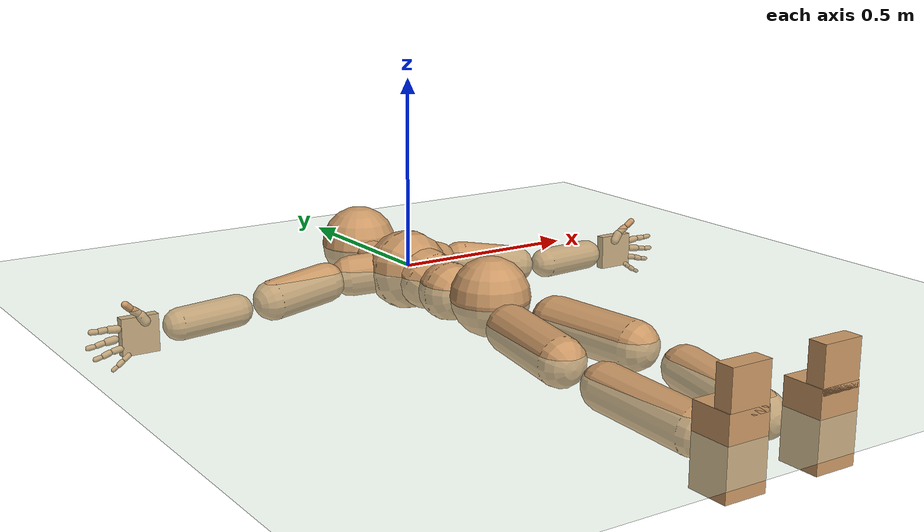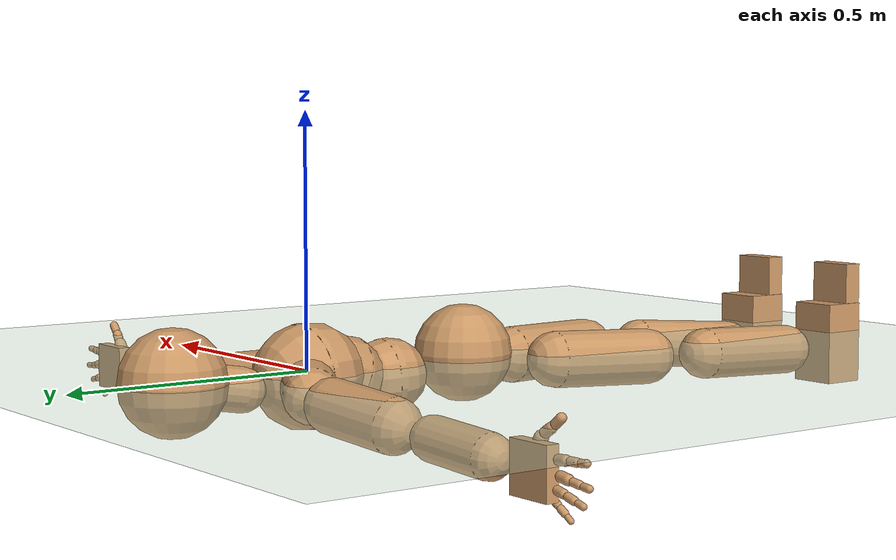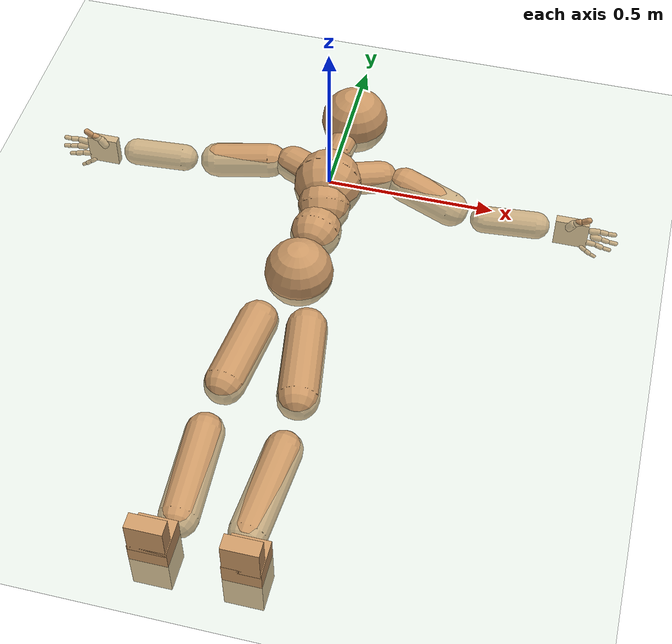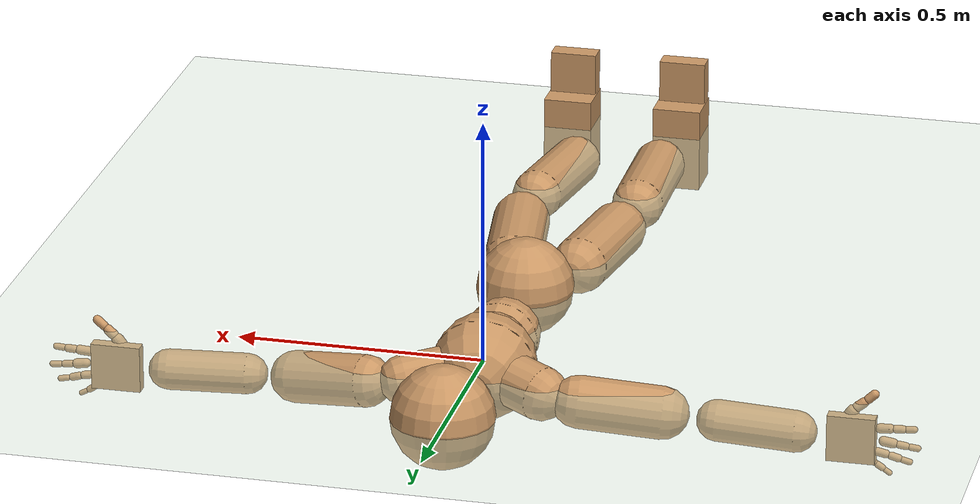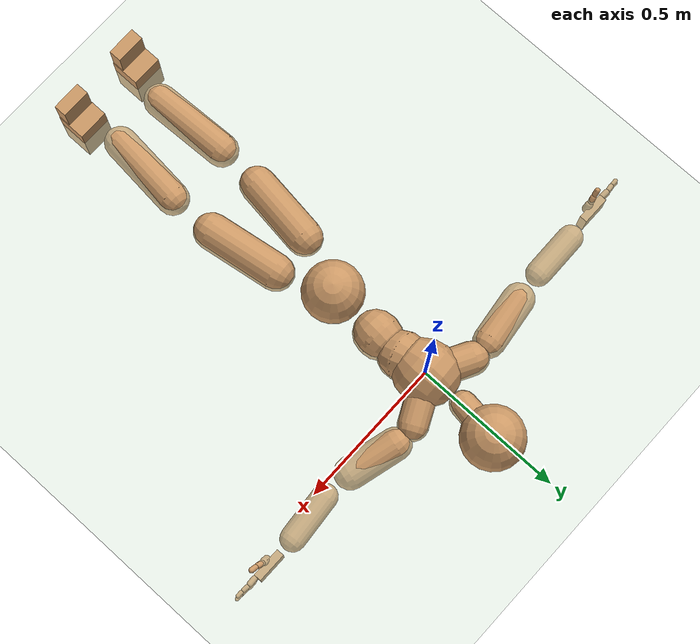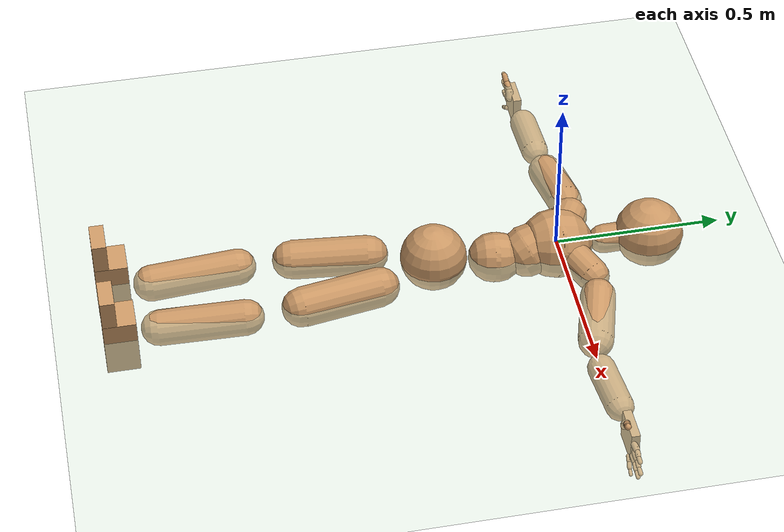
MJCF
<mujoco model="humanoid">
  <compiler coordinate="local"/>
  <default>
    <joint damping="0.0" armature="0.01" stiffness="0.0" limited="true"/>
    <geom conaffinity="1" condim="3" contype="7" margin="0.001" rgba="0.8 0.6 .4 1"/>
  </default>
  <asset>
    <texture type="skybox" builtin="gradient" rgb1=".4 .5 .6" rgb2="0 0 0" width="100" height="100"/>
    <texture builtin="flat" height="1278" mark="cross" markrgb="1 1 1" name="texgeom" random="0.01" rgb1="0.8 0.6 0.4" rgb2="0.8 0.6 0.4" type="cube" width="127"/>
    <texture builtin="checker" height="100" name="texplane" rgb1="0 0 0" rgb2="0.8 0.8 0.8" type="2d" width="100"/>
    <material name="MatPlane" reflectance="0.5" shininess="1" specular="1" texrepeat="60 60" texture="texplane"/>
    <material name="geom" texture="texgeom" texuniform="true"/>
  </asset>
  <worldbody>
    <light cutoff="100" diffuse="1 1 1" dir="-0 0 -1.3" directional="true" exponent="1" pos="0 0 1.3" specular=".1 .1 .1"/>
    <geom conaffinity="1" condim="3" name="floor" pos="0 0 0" rgba="0.8 0.9 0.8 1" size="100 100 .2" type="plane" material="MatPlane"/>
    <body name="Pelvis" pos="0.0028 -0.3752 0.0069">
      <freejoint name="Pelvis"/>
      <geom type="sphere" contype="1" conaffinity="1" density="4629.6296296296305" size="0.0999" pos="0.0000 0.0000 0.0000" name="Pelvis"/>
      <body name="L_Hip" pos="0.0562 -0.0959 -0.0252">
        <joint name="L_Hip_x" type="hinge" pos="0 0 0" axis="1 0 0" user="250 2.5 1 500 10 2" armature="0.01" range="-90.0000 90.0000" damping="0" stiffness="0"/>
        <joint name="L_Hip_y" type="hinge" pos="0 0 0" axis="0 1 0" user="250 2.5 1 500 10 2" armature="0.01" range="-90.0000 90.0000" damping="0" stiffness="0"/>
        <joint name="L_Hip_z" type="hinge" pos="0 0 0" axis="0 0 1" user="250 2.5 1 500 10 2" armature="0.01" range="-90.0000 90.0000" damping="0" stiffness="0"/>
        <geom type="capsule" contype="1" conaffinity="1" density="2040.816327" fromto="0.0123 -0.0793 -0.0010 0.0490 -0.3173 -0.0040" size="0.0595" name="L_Hip"/>
        <body name="L_Knee" pos="0.0613 -0.3967 -0.005">
          <joint name="L_Knee_x" type="hinge" pos="0 0 0" axis="1 0 0" user="250 2.5 1 500 10 2" armature="0.01" range="-180.0000 180.0000" damping="0" stiffness="0"/>
          <joint name="L_Knee_y" type="hinge" pos="0 0 0" axis="0 1 0" user="250 2.5 1 500 10 2" armature="0.01" range="-5.6250 5.6250" damping="0" stiffness="0"/>
          <joint name="L_Knee_z" type="hinge" pos="0 0 0" axis="0 0 1" user="250 2.5 1 500 10 2" armature="0.01" range="-5.6250 5.6250" damping="0" stiffness="0"/>
          <geom type="capsule" contype="1" conaffinity="1" density="1234.567901" fromto="-0.0084 -0.0845 -0.0061 -0.0337 -0.3381 -0.0246" size="0.0531" name="L_Knee"/>
          <body name="L_Ankle" pos="-0.0421 -0.4226 -0.0307">
            <joint name="L_Ankle_x" type="hinge" pos="0 0 0" axis="1 0 0" user="150 2.5 1 500 10 2" armature="0.01" range="-90.0000 90.0000" damping="0" stiffness="0"/>
            <joint name="L_Ankle_y" type="hinge" pos="0 0 0" axis="0 1 0" user="150 2.5 1 500 10 2" armature="0.01" range="-90.0000 90.0000" damping="0" stiffness="0"/>
            <joint name="L_Ankle_z" type="hinge" pos="0 0 0" axis="0 0 1" user="150 2.5 1 500 10 2" armature="0.01" range="-90.0000 90.0000" damping="0" stiffness="0"/>
            <geom type="box" density="448.447842" pos="0.0419 -0.0312 0.0252" size="0.0515 0.0487 0.0891" quat="1.0000 0.0000 0.0000 0.0000" name="L_Ankle"/>
            <body name="L_Toe" pos="0.0487 -0.0623 0.1239">
              <joint name="L_Toe_x" type="hinge" pos="0 0 0" axis="1 0 0" user="150 1 1 500 1 1" armature="0.01" range="-90.0000 90.0000" damping="0" stiffness="0"/>
              <joint name="L_Toe_y" type="hinge" pos="0 0 0" axis="0 1 0" user="150 1 1 500 1 1" armature="0.01" range="-45.0000 45.0000" damping="0" stiffness="0"/>
              <joint name="L_Toe_z" type="hinge" pos="0 0 0" axis="0 0 1" user="150 1 1 500 1 1" armature="0.01" range="-45.0000 45.0000" damping="0" stiffness="0"/>
              <geom type="box" density="422.977889" pos="-0.0068 0.0037 0.0271" size="0.0493 0.0213 0.0519" quat="1.0000 0.0000 0.0000 0.0000" name="L_Toe"/>
            </body>
          </body>
        </body>
      </body>
      <body name="R_Hip" pos="-0.0612 -0.1085 -0.0196">
        <joint name="R_Hip_x" type="hinge" pos="0 0 0" axis="1 0 0" user="250 2.5 1 500 10 2" armature="0.01" range="-90.0000 90.0000" damping="0" stiffness="0"/>
        <joint name="R_Hip_y" type="hinge" pos="0 0 0" axis="0 1 0" user="250 2.5 1 500 10 2" armature="0.01" range="-90.0000 90.0000" damping="0" stiffness="0"/>
        <joint name="R_Hip_z" type="hinge" pos="0 0 0" axis="0 0 1" user="250 2.5 1 500 10 2" armature="0.01" range="-90.0000 90.0000" damping="0" stiffness="0"/>
        <geom type="capsule" contype="1" conaffinity="1" density="2040.816327" fromto="-0.0101 -0.0757 -0.0026 -0.0405 -0.3027 -0.0105" size="0.0588" name="R_Hip"/>
        <body name="R_Knee" pos="-0.0506 -0.3783 -0.0131">
          <joint name="R_Knee_x" type="hinge" pos="0 0 0" axis="1 0 0" user="250 2.5 1 500 10 2" armature="0.01" range="-180.0000 180.0000" damping="0" stiffness="0"/>
          <joint name="R_Knee_y" type="hinge" pos="0 0 0" axis="0 1 0" user="250 2.5 1 500 10 2" armature="0.01" range="-5.6250 5.6250" damping="0" stiffness="0"/>
          <joint name="R_Knee_z" type="hinge" pos="0 0 0" axis="0 0 1" user="250 2.5 1 500 10 2" armature="0.01" range="-5.6250 5.6250" damping="0" stiffness="0"/>
          <geom type="capsule" contype="1" conaffinity="1" density="1234.567901" fromto="0.0028 -0.0862 -0.0038 0.0112 -0.3450 -0.0152" size="0.0546" name="R_Knee"/>
          <body name="R_Ankle" pos="0.014 -0.4312 -0.019">
            <joint name="R_Ankle_x" type="hinge" pos="0 0 0" axis="1 0 0" user="150 1 1 500 10 2" armature="0.01" range="-90.0000 90.0000" damping="0" stiffness="0"/>
            <joint name="R_Ankle_y" type="hinge" pos="0 0 0" axis="0 1 0" user="150 1 1 500 10 2" armature="0.01" range="-90.0000 90.0000" damping="0" stiffness="0"/>
            <joint name="R_Ankle_z" type="hinge" pos="0 0 0" axis="0 0 1" user="150 1 1 500 10 2" armature="0.01" range="-90.0000 90.0000" damping="0" stiffness="0"/>
            <geom type="box" density="448.444328" pos="-0.0251 -0.0283 0.0158" size="0.0515 0.0487 0.0891" quat="1.0000 0.0000 0.0000 0.0000" name="R_Ankle"/>
            <body name="R_Toe" pos="-0.0402 -0.0623 0.1248">
              <joint name="R_Toe_x" type="hinge" pos="0 0 0" axis="1 0 0" user="150 1 1 500 1 1" armature="0.01" range="-90.0000 90.0000" damping="0" stiffness="0"/>
              <joint name="R_Toe_y" type="hinge" pos="0 0 0" axis="0 1 0" user="150 1 1 500 1 1" armature="0.01" range="-45.0000 45.0000" damping="0" stiffness="0"/>
              <joint name="R_Toe_z" type="hinge" pos="0 0 0" axis="0 0 1" user="150 1 1 500 1 1" armature="0.01" range="-45.0000 45.0000" damping="0" stiffness="0"/>
              <geom type="box" density="422.993034" pos="0.0150 0.0066 0.0169" size="0.0493 0.0213 0.0519" quat="1.0000 0.0000 0.0000 0.0000" name="R_Toe"/>
            </body>
          </body>
        </body>
      </body>
      <body name="Torso" pos="-0.0027 0.1154 -0.0288">
        <joint name="Torso_x" type="hinge" pos="0 0 0" axis="1 0 0" user="500 5 1 500 10 2" armature="0.01" range="-60.0000 60.0000" damping="0" stiffness="0"/>
        <joint name="Torso_y" type="hinge" pos="0 0 0" axis="0 1 0" user="500 5 1 500 10 2" armature="0.01" range="-60.0000 60.0000" damping="0" stiffness="0"/>
        <joint name="Torso_z" type="hinge" pos="0 0 0" axis="0 0 1" user="500 5 1 500 10 2" armature="0.01" range="-60.0000 60.0000" damping="0" stiffness="0"/>
        <geom type="capsule" contype="1" conaffinity="1" density="2040.816327" fromto="0.0044 0.0650 -0.0027 0.0054 0.0795 -0.0034" size="0.0748" name="Torso"/>
        <body name="Spine" pos="0.0098 0.1445 -0.0061">
          <joint name="Spine_x" type="hinge" pos="0 0 0" axis="1 0 0" user="500 5 1 500 10 2" armature="0.01" range="-60.0000 60.0000" damping="0" stiffness="0"/>
          <joint name="Spine_y" type="hinge" pos="0 0 0" axis="0 1 0" user="500 5 1 500 10 2" armature="0.01" range="-60.0000 60.0000" damping="0" stiffness="0"/>
          <joint name="Spine_z" type="hinge" pos="0 0 0" axis="0 0 1" user="500 5 1 500 10 2" armature="0.01" range="-60.0000 60.0000" damping="0" stiffness="0"/>
          <geom type="capsule" contype="1" conaffinity="1" density="2040.816327" fromto="-0.0051 0.0261 0.0113 -0.0063 0.0319 0.0138" size="0.0789" name="Spine"/>
          <body name="Chest" pos="-0.0114 0.058 0.025">
            <joint name="Chest_x" type="hinge" pos="0 0 0" axis="1 0 0" user="500 5 1 500 10 2" armature="0.01" range="-60.0000 60.0000" damping="0" stiffness="0"/>
            <joint name="Chest_y" type="hinge" pos="0 0 0" axis="0 1 0" user="500 5 1 500 10 2" armature="0.01" range="-60.0000 60.0000" damping="0" stiffness="0"/>
            <joint name="Chest_z" type="hinge" pos="0 0 0" axis="0 0 1" user="500 5 1 500 10 2" armature="0.01" range="-60.0000 60.0000" damping="0" stiffness="0"/>
            <geom type="capsule" contype="1" conaffinity="1" density="2040.816327" fromto="-0.0020 0.0519 -0.0057 -0.0025 0.0635 -0.0070" size="0.1041" name="Chest"/>
            <body name="Neck" pos="-0.0122 0.1709 -0.0239">
              <joint name="Neck_x" type="hinge" pos="0 0 0" axis="1 0 0" user="150 1 1 250 50 4" armature="0.01" range="-180.0000 180.0000" damping="0" stiffness="0"/>
              <joint name="Neck_y" type="hinge" pos="0 0 0" axis="0 1 0" user="150 1 1 250 50 4" armature="0.01" range="-180.0000 180.0000" damping="0" stiffness="0"/>
              <joint name="Neck_z" type="hinge" pos="0 0 0" axis="0 0 1" user="150 1 1 250 50 4" armature="0.01" range="-180.0000 180.0000" damping="0" stiffness="0"/>
              <geom type="capsule" contype="1" conaffinity="1" density="1000" fromto="0.0051 0.0338 0.0055 0.0205 0.1352 0.0220" size="0.0437" name="Neck"/>
              <body name="Head" pos="0.0257 0.169 0.0274">
                <joint name="Head_x" type="hinge" pos="0 0 0" axis="1 0 0" user="150 1 1 250 50 4" armature="0.01" range="-90.0000 90.0000" damping="0" stiffness="0"/>
                <joint name="Head_y" type="hinge" pos="0 0 0" axis="0 1 0" user="150 1 1 250 50 4" armature="0.01" range="-90.0000 90.0000" damping="0" stiffness="0"/>
                <joint name="Head_z" type="hinge" pos="0 0 0" axis="0 0 1" user="150 1 1 250 50 4" armature="0.01" range="-90.0000 90.0000" damping="0" stiffness="0"/>
                <geom type="sphere" contype="1" conaffinity="1" density="1000" size="0.1036" pos="0.0000 0.0000 0.0000" name="Head"/>
              </body>
            </body>
            <body name="L_Thorax" pos="0.0467 0.0881 -0.0038">
              <joint name="L_Thorax_x" type="hinge" pos="0 0 0" axis="1 0 0" user="200 2 1 500 50 4" armature="0.01" range="-180.0000 180.0000" damping="0" stiffness="0"/>
              <joint name="L_Thorax_y" type="hinge" pos="0 0 0" axis="0 1 0" user="200 2 1 500 50 4" armature="0.01" range="-180.0000 180.0000" damping="0" stiffness="0"/>
              <joint name="L_Thorax_z" type="hinge" pos="0 0 0" axis="0 0 1" user="200 2 1 500 50 4" armature="0.01" range="-180.0000 180.0000" damping="0" stiffness="0"/>
              <geom type="capsule" contype="1" conaffinity="1" density="1000" fromto="0.0243 0.0119 -0.0037 0.0974 0.0475 -0.0147" size="0.0496" name="L_Thorax"/>
              <body name="L_Shoulder" pos="0.1217 0.0593 -0.0184">
                <joint name="L_Shoulder_x" type="hinge" pos="0 0 0" axis="1 0 0" user="200 2 1 500 50 4" armature="0.01" range="-180.0000 180.0000" damping="0" stiffness="0"/>
                <joint name="L_Shoulder_y" type="hinge" pos="0 0 0" axis="0 1 0" user="200 2 1 500 50 4" armature="0.01" range="-180.0000 180.0000" damping="0" stiffness="0"/>
                <joint name="L_Shoulder_z" type="hinge" pos="0 0 0" axis="0 0 1" user="200 2 1 500 50 4" armature="0.01" range="-180.0000 180.0000" damping="0" stiffness="0"/>
                <geom type="capsule" contype="1" conaffinity="1" density="1000" fromto="0.0514 -0.0145 -0.0083 0.2054 -0.0581 -0.0332" size="0.0526" name="L_Shoulder"/>
                <body name="L_Elbow" pos="0.2568 -0.0726 -0.0415">
                  <joint name="L_Elbow_x" type="hinge" pos="0 0 0" axis="1 0 0" user="150 1 1 150 10 2" armature="0.01" range="-720.0000 720.0000" damping="0" stiffness="0"/>
                  <joint name="L_Elbow_y" type="hinge" pos="0 0 0" axis="0 1 0" user="150 1 1 150 10 2" armature="0.01" range="-720.0000 720.0000" damping="0" stiffness="0"/>
                  <joint name="L_Elbow_z" type="hinge" pos="0 0 0" axis="0 0 1" user="150 1 1 150 10 2" armature="0.01" range="-720.0000 720.0000" damping="0" stiffness="0"/>
                  <geom type="capsule" contype="1" conaffinity="1" density="1000" fromto="0.0526 0.0047 -0.0002 0.2105 0.0187 -0.0008" size="0.0411" name="L_Elbow"/>
                  <body name="L_Wrist" pos="0.2631 0.0234 -0.0009">
                    <joint name="L_Wrist_x" type="hinge" pos="0 0 0" axis="1 0 0" user="100 1 1 150 1 1" armature="0.01" range="-180.0000 180.0000" damping="0" stiffness="0"/>
                    <joint name="L_Wrist_y" type="hinge" pos="0 0 0" axis="0 1 0" user="100 1 1 150 1 1" armature="0.01" range="-180.0000 180.0000" damping="0" stiffness="0"/>
                    <joint name="L_Wrist_z" type="hinge" pos="0 0 0" axis="0 0 1" user="100 1 1 150 1 1" armature="0.01" range="-180.0000 180.0000" damping="0" stiffness="0"/>
                    <geom type="box" density="1208.345439" pos="0.0549 -0.0016 -0.0030" size="0.0505 0.0127 0.0475" quat="1.0000 0.0000 0.0000 0.0000" name="L_Wrist"/>
                    <body name="L_Index1" pos="0.1066 -0.0086 0.02">
                      <joint name="L_Index1_x" type="hinge" pos="0 0 0" axis="1 0 0" user="100 10 1 150" armature="0.01" range="-180.0000 180.0000" damping="0" stiffness="0"/>
                      <joint name="L_Index1_y" type="hinge" pos="0 0 0" axis="0 1 0" user="100 10 1 150" armature="0.01" range="-180.0000 180.0000" damping="0" stiffness="0"/>
                      <joint name="L_Index1_z" type="hinge" pos="0 0 0" axis="0 0 1" user="100 10 1 150" armature="0.01" range="-180.0000 180.0000" damping="0" stiffness="0"/>
                      <geom type="capsule" contype="1" conaffinity="1" density="1000" fromto="0.0066 0.0005 0.0006 0.0263 0.0018 0.0023" size="0.0095" name="L_Index1"/>
                      <body name="L_Index2" pos="0.0329 0.0023 0.0029">
                        <joint name="L_Index2_x" type="hinge" pos="0 0 0" axis="1 0 0" user="100 10 1 150" armature="0.01" range="-180.0000 180.0000" damping="0" stiffness="0"/>
                        <joint name="L_Index2_y" type="hinge" pos="0 0 0" axis="0 1 0" user="100 10 1 150" armature="0.01" range="-180.0000 180.0000" damping="0" stiffness="0"/>
                        <joint name="L_Index2_z" type="hinge" pos="0 0 0" axis="0 0 1" user="100 10 1 150" armature="0.01" range="-180.0000 180.0000" damping="0" stiffness="0"/>
                        <geom type="capsule" contype="1" conaffinity="1" density="1000" fromto="0.0046 -0.0005 -0.0000 0.0186 -0.0020 -0.0002" size="0.0079" name="L_Index2"/>
                        <body name="L_Index3" pos="0.0232 -0.0025 -0.0002">
                          <joint name="L_Index3_x" type="hinge" pos="0 0 0" axis="1 0 0" user="100 10 1 150" armature="0.01" range="-180.0000 180.0000" damping="0" stiffness="0"/>
                          <joint name="L_Index3_y" type="hinge" pos="0 0 0" axis="0 1 0" user="100 10 1 150" armature="0.01" range="-180.0000 180.0000" damping="0" stiffness="0"/>
                          <joint name="L_Index3_z" type="hinge" pos="0 0 0" axis="0 0 1" user="100 10 1 150" armature="0.01" range="-180.0000 180.0000" damping="0" stiffness="0"/>
                          <geom type="capsule" contype="1" conaffinity="1" density="1000" fromto="0.0050 -0.0001 0.0004 0.0202 -0.0004 0.0014" size="0.0067" name="L_Index3"/>
                        </body>
                      </body>
                    </body>
                    <body name="L_Middle1" pos="0.1146 -0.0063 -0.0042">
                      <joint name="L_Middle1_x" type="hinge" pos="0 0 0" axis="1 0 0" user="100 10 1 150" armature="0.01" range="-180.0000 180.0000" damping="0" stiffness="0"/>
                      <joint name="L_Middle1_y" type="hinge" pos="0 0 0" axis="0 1 0" user="100 10 1 150" armature="0.01" range="-180.0000 180.0000" damping="0" stiffness="0"/>
                      <joint name="L_Middle1_z" type="hinge" pos="0 0 0" axis="0 0 1" user="100 10 1 150" armature="0.01" range="-180.0000 180.0000" damping="0" stiffness="0"/>
                      <geom type="capsule" contype="1" conaffinity="1" density="1000" fromto="0.0063 0.0001 -0.0008 0.0253 0.0006 -0.0033" size="0.0097" name="L_Middle1"/>
                      <body name="L_Middle2" pos="0.0316 0.0007 -0.0041">
                        <joint name="L_Middle2_x" type="hinge" pos="0 0 0" axis="1 0 0" user="100 10 1 150" armature="0.01" range="-180.0000 180.0000" damping="0" stiffness="0"/>
                        <joint name="L_Middle2_y" type="hinge" pos="0 0 0" axis="0 1 0" user="100 10 1 150" armature="0.01" range="-180.0000 180.0000" damping="0" stiffness="0"/>
                        <joint name="L_Middle2_z" type="hinge" pos="0 0 0" axis="0 0 1" user="100 10 1 150" armature="0.01" range="-180.0000 180.0000" damping="0" stiffness="0"/>
                        <geom type="capsule" contype="1" conaffinity="1" density="1000" fromto="0.0048 -0.0004 -0.0009 0.0194 -0.0017 -0.0034" size="0.0073" name="L_Middle2"/>
                        <body name="L_Middle3" pos="0.0242 -0.0021 -0.0043">
                          <joint name="L_Middle3_x" type="hinge" pos="0 0 0" axis="1 0 0" user="100 10 1 150" armature="0.01" range="-180.0000 180.0000" damping="0" stiffness="0"/>
                          <joint name="L_Middle3_y" type="hinge" pos="0 0 0" axis="0 1 0" user="100 10 1 150" armature="0.01" range="-180.0000 180.0000" damping="0" stiffness="0"/>
                          <joint name="L_Middle3_z" type="hinge" pos="0 0 0" axis="0 0 1" user="100 10 1 150" armature="0.01" range="-180.0000 180.0000" damping="0" stiffness="0"/>
                          <geom type="capsule" contype="1" conaffinity="1" density="1000" fromto="0.0052 -0.0000 -0.0005 0.0210 -0.0001 -0.0018" size="0.0064" name="L_Middle3"/>
                        </body>
                      </body>
                    </body>
                    <body name="L_Pinky1" pos="0.0887 -0.0145 -0.0452">
                      <joint name="L_Pinky1_x" type="hinge" pos="0 0 0" axis="1 0 0" user="100 10 1 150" armature="0.01" range="-180.0000 180.0000" damping="0" stiffness="0"/>
                      <joint name="L_Pinky1_y" type="hinge" pos="0 0 0" axis="0 1 0" user="100 10 1 150" armature="0.01" range="-180.0000 180.0000" damping="0" stiffness="0"/>
                      <joint name="L_Pinky1_z" type="hinge" pos="0 0 0" axis="0 0 1" user="100 10 1 150" armature="0.01" range="-180.0000 180.0000" damping="0" stiffness="0"/>
                      <geom type="capsule" contype="1" conaffinity="1" density="1000" fromto="0.0033 -0.0002 -0.0025 0.0132 -0.0010 -0.0098" size="0.0069" name="L_Pinky1"/>
                      <body name="L_Pinky2" pos="0.0165 -0.0012 -0.0123">
                        <joint name="L_Pinky2_x" type="hinge" pos="0 0 0" axis="1 0 0" user="100 10 1 150" armature="0.01" range="-180.0000 180.0000" damping="0" stiffness="0"/>
                        <joint name="L_Pinky2_y" type="hinge" pos="0 0 0" axis="0 1 0" user="100 10 1 150" armature="0.01" range="-180.0000 180.0000" damping="0" stiffness="0"/>
                        <joint name="L_Pinky2_z" type="hinge" pos="0 0 0" axis="0 0 1" user="100 10 1 150" armature="0.01" range="-180.0000 180.0000" damping="0" stiffness="0"/>
                        <geom type="capsule" contype="1" conaffinity="1" density="1000" fromto="0.0032 -0.0004 -0.0023 0.0130 -0.0015 -0.0091" size="0.0067" name="L_Pinky2"/>
                        <body name="L_Pinky3" pos="0.0162 -0.0018 -0.0114">
                          <joint name="L_Pinky3_x" type="hinge" pos="0 0 0" axis="1 0 0" user="100 10 1 150" armature="0.01" range="-180.0000 180.0000" damping="0" stiffness="0"/>
                          <joint name="L_Pinky3_y" type="hinge" pos="0 0 0" axis="0 1 0" user="100 10 1 150" armature="0.01" range="-180.0000 180.0000" damping="0" stiffness="0"/>
                          <joint name="L_Pinky3_z" type="hinge" pos="0 0 0" axis="0 0 1" user="100 10 1 150" armature="0.01" range="-180.0000 180.0000" damping="0" stiffness="0"/>
                          <geom type="capsule" contype="1" conaffinity="1" density="1000" fromto="0.0036 0.0000 -0.0019 0.0146 0.0001 -0.0075" size="0.0051" name="L_Pinky3"/>
                        </body>
                      </body>
                    </body>
                    <body name="L_Ring1" pos="0.1025 -0.0092 -0.0283">
                      <joint name="L_Ring1_x" type="hinge" pos="0 0 0" axis="1 0 0" user="100 10 1 150" armature="0.01" range="-180.0000 180.0000" damping="0" stiffness="0"/>
                      <joint name="L_Ring1_y" type="hinge" pos="0 0 0" axis="0 1 0" user="100 10 1 150" armature="0.01" range="-180.0000 180.0000" damping="0" stiffness="0"/>
                      <joint name="L_Ring1_z" type="hinge" pos="0 0 0" axis="0 0 1" user="100 10 1 150" armature="0.01" range="-180.0000 180.0000" damping="0" stiffness="0"/>
                      <geom type="capsule" contype="1" conaffinity="1" density="1000" fromto="0.0058 0.0003 -0.0011 0.0234 0.0012 -0.0043" size="0.0082" name="L_Ring1"/>
                      <body name="L_Ring2" pos="0.0292 0.0015 -0.0054">
                        <joint name="L_Ring2_x" type="hinge" pos="0 0 0" axis="1 0 0" user="100 10 1 150" armature="0.01" range="-180.0000 180.0000" damping="0" stiffness="0"/>
                        <joint name="L_Ring2_y" type="hinge" pos="0 0 0" axis="0 1 0" user="100 10 1 150" armature="0.01" range="-180.0000 180.0000" damping="0" stiffness="0"/>
                        <joint name="L_Ring2_z" type="hinge" pos="0 0 0" axis="0 0 1" user="100 10 1 150" armature="0.01" range="-180.0000 180.0000" damping="0" stiffness="0"/>
                        <geom type="capsule" contype="1" conaffinity="1" density="1000" fromto="0.0047 -0.0003 -0.0015 0.0189 -0.0013 -0.0058" size="0.0077" name="L_Ring2"/>
                        <body name="L_Ring3" pos="0.0236 -0.0016 -0.0073">
                          <joint name="L_Ring3_x" type="hinge" pos="0 0 0" axis="1 0 0" user="100 10 1 150" armature="0.01" range="-180.0000 180.0000" damping="0" stiffness="0"/>
                          <joint name="L_Ring3_y" type="hinge" pos="0 0 0" axis="0 1 0" user="100 10 1 150" armature="0.01" range="-180.0000 180.0000" damping="0" stiffness="0"/>
                          <joint name="L_Ring3_z" type="hinge" pos="0 0 0" axis="0 0 1" user="100 10 1 150" armature="0.01" range="-180.0000 180.0000" damping="0" stiffness="0"/>
                          <geom type="capsule" contype="1" conaffinity="1" density="1000" fromto="0.0051 0.0001 -0.0011 0.0205 0.0003 -0.0042" size="0.006" name="L_Ring3"/>
                        </body>
                      </body>
                    </body>
                    <body name="L_Thumb1" pos="0.0429 -0.0189 0.0267">
                      <joint name="L_Thumb1_x" type="hinge" pos="0 0 0" axis="1 0 0" user="100 10 1 150" armature="0.01" range="-180.0000 180.0000" damping="0" stiffness="0"/>
                      <joint name="L_Thumb1_y" type="hinge" pos="0 0 0" axis="0 1 0" user="100 10 1 150" armature="0.01" range="-180.0000 180.0000" damping="0" stiffness="0"/>
                      <joint name="L_Thumb1_z" type="hinge" pos="0 0 0" axis="0 0 1" user="100 10 1 150" armature="0.01" range="-180.0000 180.0000" damping="0" stiffness="0"/>
                      <geom type="capsule" contype="1" conaffinity="1" density="1000" fromto="0.0036 0.0002 0.0052 0.0142 0.0009 0.0208" size="0.0126" name="L_Thumb1"/>
                      <body name="L_Thumb2" pos="0.0178 0.0011 0.026">
                        <joint name="L_Thumb2_x" type="hinge" pos="0 0 0" axis="1 0 0" user="100 10 1 150" armature="0.01" range="-180.0000 180.0000" damping="0" stiffness="0"/>
                        <joint name="L_Thumb2_y" type="hinge" pos="0 0 0" axis="0 1 0" user="100 10 1 150" armature="0.01" range="-180.0000 180.0000" damping="0" stiffness="0"/>
                        <joint name="L_Thumb2_z" type="hinge" pos="0 0 0" axis="0 0 1" user="100 10 1 150" armature="0.01" range="-180.0000 180.0000" damping="0" stiffness="0"/>
                        <geom type="capsule" contype="1" conaffinity="1" density="1000" fromto="0.0043 -0.0010 0.0032 0.0172 -0.0041 0.0128" size="0.01" name="L_Thumb2"/>
                        <body name="L_Thumb3" pos="0.0215 -0.0052 0.016">
                          <joint name="L_Thumb3_x" type="hinge" pos="0 0 0" axis="1 0 0" user="100 10 1 150" armature="0.01" range="-180.0000 180.0000" damping="0" stiffness="0"/>
                          <joint name="L_Thumb3_y" type="hinge" pos="0 0 0" axis="0 1 0" user="100 10 1 150" armature="0.01" range="-180.0000 180.0000" damping="0" stiffness="0"/>
                          <joint name="L_Thumb3_z" type="hinge" pos="0 0 0" axis="0 0 1" user="100 10 1 150" armature="0.01" range="-180.0000 180.0000" damping="0" stiffness="0"/>
                          <geom type="capsule" contype="1" conaffinity="1" density="1000" fromto="0.0047 -0.0006 0.0036 0.0188 -0.0025 0.0144" size="0.009" name="L_Thumb3"/>
                        </body>
                      </body>
                    </body>
                  </body>
                </body>
              </body>
            </body>
            <body name="R_Thorax" pos="-0.048 0.0872 -0.0104">
              <joint name="R_Thorax_x" type="hinge" pos="0 0 0" axis="1 0 0" user="200 2 1 150 10 2" armature="0.01" range="-180.0000 180.0000" damping="0" stiffness="0"/>
              <joint name="R_Thorax_y" type="hinge" pos="0 0 0" axis="0 1 0" user="200 2 1 150 10 2" armature="0.01" range="-180.0000 180.0000" damping="0" stiffness="0"/>
              <joint name="R_Thorax_z" type="hinge" pos="0 0 0" axis="0 0 1" user="200 2 1 150 10 2" armature="0.01" range="-180.0000 180.0000" damping="0" stiffness="0"/>
              <geom type="capsule" contype="1" conaffinity="1" density="1000" fromto="-0.0211 0.0110 -0.0028 -0.0845 0.0439 -0.0114" size="0.0545" name="R_Thorax"/>
              <body name="R_Shoulder" pos="-0.1056 0.0548 -0.0142">
                <joint name="R_Shoulder_x" type="hinge" pos="0 0 0" axis="1 0 0" user="200 2 1 250 10 2" armature="0.01" range="-180.0000 180.0000" damping="0" stiffness="0"/>
                <joint name="R_Shoulder_y" type="hinge" pos="0 0 0" axis="0 1 0" user="200 2 1 250 10 2" armature="0.01" range="-180.0000 180.0000" damping="0" stiffness="0"/>
                <joint name="R_Shoulder_z" type="hinge" pos="0 0 0" axis="0 0 1" user="200 2 1 250 10 2" armature="0.01" range="-180.0000 180.0000" damping="0" stiffness="0"/>
                <geom type="capsule" contype="1" conaffinity="1" density="1000" fromto="-0.0548 -0.0072 -0.0053 -0.2190 -0.0290 -0.0214" size="0.0526" name="R_Shoulder"/>
                <body name="R_Elbow" pos="-0.2738 -0.0362 -0.0267">
                  <joint name="R_Elbow_x" type="hinge" pos="0 0 0" axis="1 0 0" user="150 1 1 150 10 2" armature="0.01" range="-720.0000 720.0000" damping="0" stiffness="0"/>
                  <joint name="R_Elbow_y" type="hinge" pos="0 0 0" axis="0 1 0" user="150 1 1 150 10 2" armature="0.01" range="-720.0000 720.0000" damping="0" stiffness="0"/>
                  <joint name="R_Elbow_z" type="hinge" pos="0 0 0" axis="0 0 1" user="150 1 1 150 10 2" armature="0.01" range="-720.0000 720.0000" damping="0" stiffness="0"/>
                  <geom type="capsule" contype="1" conaffinity="1" density="1000" fromto="-0.0520 -0.0009 -0.0028 -0.2079 -0.0035 -0.0111" size="0.0414" name="R_Elbow"/>
                  <body name="R_Wrist" pos="-0.2599 -0.0044 -0.0139">
                    <joint name="R_Wrist_x" type="hinge" pos="0 0 0" axis="1 0 0" user="100 1 1 150 1 1" armature="0.01" range="-180.0000 180.0000" damping="0" stiffness="0"/>
                    <joint name="R_Wrist_y" type="hinge" pos="0 0 0" axis="0 1 0" user="100 1 1 150 1 1" armature="0.01" range="-180.0000 180.0000" damping="0" stiffness="0"/>
                    <joint name="R_Wrist_z" type="hinge" pos="0 0 0" axis="0 0 1" user="100 1 1 150 1 1" armature="0.01" range="-180.0000 180.0000" damping="0" stiffness="0"/>
                    <geom type="box" density="1233.864788" pos="-0.0561 -0.0049 -0.0025" size="0.0477 0.0127 0.0475" quat="1.0000 0.0000 0.0000 0.0000" name="R_Wrist"/>
                    <body name="R_Index1" pos="-0.1046 -0.0119 0.0205">
                      <joint name="R_Index1_x" type="hinge" pos="0 0 0" axis="1 0 0" user="100 10 1 150" armature="0.01" range="-180.0000 180.0000" damping="0" stiffness="0"/>
                      <joint name="R_Index1_y" type="hinge" pos="0 0 0" axis="0 1 0" user="100 10 1 150" armature="0.01" range="-180.0000 180.0000" damping="0" stiffness="0"/>
                      <joint name="R_Index1_z" type="hinge" pos="0 0 0" axis="0 0 1" user="100 10 1 150" armature="0.01" range="-180.0000 180.0000" damping="0" stiffness="0"/>
                      <geom type="capsule" contype="1" conaffinity="1" density="1000" fromto="-0.0066 0.0005 0.0006 -0.0263 0.0018 0.0023" size="0.0095" name="R_Index1"/>
                      <body name="R_Index2" pos="-0.0329 0.0023 0.0029">
                        <joint name="R_Index2_x" type="hinge" pos="0 0 0" axis="1 0 0" user="100 10 1 150" armature="0.01" range="-180.0000 180.0000" damping="0" stiffness="0"/>
                        <joint name="R_Index2_y" type="hinge" pos="0 0 0" axis="0 1 0" user="100 10 1 150" armature="0.01" range="-180.0000 180.0000" damping="0" stiffness="0"/>
                        <joint name="R_Index2_z" type="hinge" pos="0 0 0" axis="0 0 1" user="100 10 1 150" armature="0.01" range="-180.0000 180.0000" damping="0" stiffness="0"/>
                        <geom type="capsule" contype="1" conaffinity="1" density="1000" fromto="-0.0046 -0.0005 -0.0000 -0.0186 -0.0020 -0.0002" size="0.0079" name="R_Index2"/>
                        <body name="R_Index3" pos="-0.0232 -0.0025 -0.0002">
                          <joint name="R_Index3_x" type="hinge" pos="0 0 0" axis="1 0 0" user="100 10 1 150" armature="0.01" range="-180.0000 180.0000" damping="0" stiffness="0"/>
                          <joint name="R_Index3_y" type="hinge" pos="0 0 0" axis="0 1 0" user="100 10 1 150" armature="0.01" range="-180.0000 180.0000" damping="0" stiffness="0"/>
                          <joint name="R_Index3_z" type="hinge" pos="0 0 0" axis="0 0 1" user="100 10 1 150" armature="0.01" range="-180.0000 180.0000" damping="0" stiffness="0"/>
                          <geom type="capsule" contype="1" conaffinity="1" density="1000" fromto="-0.0042 -0.0001 0.0004 -0.0170 -0.0004 0.0014" size="0.007" name="R_Index3"/>
                        </body>
                      </body>
                    </body>
                    <body name="R_Middle1" pos="-0.1125 -0.0096 -0.0036">
                      <joint name="R_Middle1_x" type="hinge" pos="0 0 0" axis="1 0 0" user="100 10 1 150" armature="0.01" range="-180.0000 180.0000" damping="0" stiffness="0"/>
                      <joint name="R_Middle1_y" type="hinge" pos="0 0 0" axis="0 1 0" user="100 10 1 150" armature="0.01" range="-180.0000 180.0000" damping="0" stiffness="0"/>
                      <joint name="R_Middle1_z" type="hinge" pos="0 0 0" axis="0 0 1" user="100 10 1 150" armature="0.01" range="-180.0000 180.0000" damping="0" stiffness="0"/>
                      <geom type="capsule" contype="1" conaffinity="1" density="1000" fromto="-0.0063 0.0001 -0.0008 -0.0253 0.0006 -0.0033" size="0.0097" name="R_Middle1"/>
                      <body name="R_Middle2" pos="-0.0316 0.0007 -0.0041">
                        <joint name="R_Middle2_x" type="hinge" pos="0 0 0" axis="1 0 0" user="100 10 1 150" armature="0.01" range="-180.0000 180.0000" damping="0" stiffness="0"/>
                        <joint name="R_Middle2_y" type="hinge" pos="0 0 0" axis="0 1 0" user="100 10 1 150" armature="0.01" range="-180.0000 180.0000" damping="0" stiffness="0"/>
                        <joint name="R_Middle2_z" type="hinge" pos="0 0 0" axis="0 0 1" user="100 10 1 150" armature="0.01" range="-180.0000 180.0000" damping="0" stiffness="0"/>
                        <geom type="capsule" contype="1" conaffinity="1" density="1000" fromto="-0.0048 -0.0004 -0.0009 -0.0194 -0.0017 -0.0034" size="0.0073" name="R_Middle2"/>
                        <body name="R_Middle3" pos="-0.0242 -0.0021 -0.0043">
                          <joint name="R_Middle3_x" type="hinge" pos="0 0 0" axis="1 0 0" user="100 10 1 150" armature="0.01" range="-180.0000 180.0000" damping="0" stiffness="0"/>
                          <joint name="R_Middle3_y" type="hinge" pos="0 0 0" axis="0 1 0" user="100 10 1 150" armature="0.01" range="-180.0000 180.0000" damping="0" stiffness="0"/>
                          <joint name="R_Middle3_z" type="hinge" pos="0 0 0" axis="0 0 1" user="100 10 1 150" armature="0.01" range="-180.0000 180.0000" damping="0" stiffness="0"/>
                          <geom type="capsule" contype="1" conaffinity="1" density="1000" fromto="-0.0044 -0.0000 -0.0005 -0.0178 -0.0001 -0.0018" size="0.0066" name="R_Middle3"/>
                        </body>
                      </body>
                    </body>
                    <body name="R_Pinky1" pos="-0.0866 -0.0178 -0.0447">
                      <joint name="R_Pinky1_x" type="hinge" pos="0 0 0" axis="1 0 0" user="100 10 1 150" armature="0.01" range="-180.0000 180.0000" damping="0" stiffness="0"/>
                      <joint name="R_Pinky1_y" type="hinge" pos="0 0 0" axis="0 1 0" user="100 10 1 150" armature="0.01" range="-180.0000 180.0000" damping="0" stiffness="0"/>
                      <joint name="R_Pinky1_z" type="hinge" pos="0 0 0" axis="0 0 1" user="100 10 1 150" armature="0.01" range="-180.0000 180.0000" damping="0" stiffness="0"/>
                      <geom type="capsule" contype="1" conaffinity="1" density="1000" fromto="-0.0033 -0.0002 -0.0025 -0.0132 -0.0010 -0.0098" size="0.0069" name="R_Pinky1"/>
                      <body name="R_Pinky2" pos="-0.0165 -0.0012 -0.0123">
                        <joint name="R_Pinky2_x" type="hinge" pos="0 0 0" axis="1 0 0" user="100 10 1 150" armature="0.01" range="-180.0000 180.0000" damping="0" stiffness="0"/>
                        <joint name="R_Pinky2_y" type="hinge" pos="0 0 0" axis="0 1 0" user="100 10 1 150" armature="0.01" range="-180.0000 180.0000" damping="0" stiffness="0"/>
                        <joint name="R_Pinky2_z" type="hinge" pos="0 0 0" axis="0 0 1" user="100 10 1 150" armature="0.01" range="-180.0000 180.0000" damping="0" stiffness="0"/>
                        <geom type="capsule" contype="1" conaffinity="1" density="1000" fromto="-0.0032 -0.0004 -0.0023 -0.0130 -0.0015 -0.0091" size="0.0067" name="R_Pinky2"/>
                        <body name="R_Pinky3" pos="-0.0162 -0.0018 -0.0114">
                          <joint name="R_Pinky3_x" type="hinge" pos="0 0 0" axis="1 0 0" user="100 10 1 150" armature="0.01" range="-180.0000 180.0000" damping="0" stiffness="0"/>
                          <joint name="R_Pinky3_y" type="hinge" pos="0 0 0" axis="0 1 0" user="100 10 1 150" armature="0.01" range="-180.0000 180.0000" damping="0" stiffness="0"/>
                          <joint name="R_Pinky3_z" type="hinge" pos="0 0 0" axis="0 0 1" user="100 10 1 150" armature="0.01" range="-180.0000 180.0000" damping="0" stiffness="0"/>
                          <geom type="capsule" contype="1" conaffinity="1" density="1000" fromto="-0.0028 0.0000 -0.0019 -0.0114 0.0001 -0.0075" size="0.0053" name="R_Pinky3"/>
                        </body>
                      </body>
                    </body>
                    <body name="R_Ring1" pos="-0.1004 -0.0125 -0.0277">
                      <joint name="R_Ring1_x" type="hinge" pos="0 0 0" axis="1 0 0" user="100 10 1 150" armature="0.01" range="-180.0000 180.0000" damping="0" stiffness="0"/>
                      <joint name="R_Ring1_y" type="hinge" pos="0 0 0" axis="0 1 0" user="100 10 1 150" armature="0.01" range="-180.0000 180.0000" damping="0" stiffness="0"/>
                      <joint name="R_Ring1_z" type="hinge" pos="0 0 0" axis="0 0 1" user="100 10 1 150" armature="0.01" range="-180.0000 180.0000" damping="0" stiffness="0"/>
                      <geom type="capsule" contype="1" conaffinity="1" density="1000" fromto="-0.0058 0.0003 -0.0011 -0.0234 0.0012 -0.0043" size="0.0082" name="R_Ring1"/>
                      <body name="R_Ring2" pos="-0.0292 0.0015 -0.0054">
                        <joint name="R_Ring2_x" type="hinge" pos="0 0 0" axis="1 0 0" user="100 10 1 150" armature="0.01" range="-180.0000 180.0000" damping="0" stiffness="0"/>
                        <joint name="R_Ring2_y" type="hinge" pos="0 0 0" axis="0 1 0" user="100 10 1 150" armature="0.01" range="-180.0000 180.0000" damping="0" stiffness="0"/>
                        <joint name="R_Ring2_z" type="hinge" pos="0 0 0" axis="0 0 1" user="100 10 1 150" armature="0.01" range="-180.0000 180.0000" damping="0" stiffness="0"/>
                        <geom type="capsule" contype="1" conaffinity="1" density="1000" fromto="-0.0047 -0.0003 -0.0015 -0.0189 -0.0013 -0.0058" size="0.0077" name="R_Ring2"/>
                        <body name="R_Ring3" pos="-0.0236 -0.0016 -0.0073">
                          <joint name="R_Ring3_x" type="hinge" pos="0 0 0" axis="1 0 0" user="100 10 1 150" armature="0.01" range="-180.0000 180.0000" damping="0" stiffness="0"/>
                          <joint name="R_Ring3_y" type="hinge" pos="0 0 0" axis="0 1 0" user="100 10 1 150" armature="0.01" range="-180.0000 180.0000" damping="0" stiffness="0"/>
                          <joint name="R_Ring3_z" type="hinge" pos="0 0 0" axis="0 0 1" user="100 10 1 150" armature="0.01" range="-180.0000 180.0000" damping="0" stiffness="0"/>
                          <geom type="capsule" contype="1" conaffinity="1" density="1000" fromto="-0.0043 0.0001 -0.0011 -0.0173 0.0003 -0.0042" size="0.0062" name="R_Ring3"/>
                        </body>
                      </body>
                    </body>
                    <body name="R_Thumb1" pos="-0.0408 -0.0222 0.0273">
                      <joint name="R_Thumb1_x" type="hinge" pos="0 0 0" axis="1 0 0" user="100 10 1 150" armature="0.01" range="-180.0000 180.0000" damping="0" stiffness="0"/>
                      <joint name="R_Thumb1_y" type="hinge" pos="0 0 0" axis="0 1 0" user="100 10 1 150" armature="0.01" range="-180.0000 180.0000" damping="0" stiffness="0"/>
                      <joint name="R_Thumb1_z" type="hinge" pos="0 0 0" axis="0 0 1" user="100 10 1 150" armature="0.01" range="-180.0000 180.0000" damping="0" stiffness="0"/>
                      <geom type="capsule" contype="1" conaffinity="1" density="1000" fromto="-0.0036 0.0002 0.0052 -0.0142 0.0009 0.0208" size="0.0126" name="R_Thumb1"/>
                      <body name="R_Thumb2" pos="-0.0178 0.0011 0.026">
                        <joint name="R_Thumb2_x" type="hinge" pos="0 0 0" axis="1 0 0" user="100 10 1 150" armature="0.01" range="-180.0000 180.0000" damping="0" stiffness="0"/>
                        <joint name="R_Thumb2_y" type="hinge" pos="0 0 0" axis="0 1 0" user="100 10 1 150" armature="0.01" range="-180.0000 180.0000" damping="0" stiffness="0"/>
                        <joint name="R_Thumb2_z" type="hinge" pos="0 0 0" axis="0 0 1" user="100 10 1 150" armature="0.01" range="-180.0000 180.0000" damping="0" stiffness="0"/>
                        <geom type="capsule" contype="1" conaffinity="1" density="1000" fromto="-0.0043 -0.0010 0.0032 -0.0172 -0.0041 0.0128" size="0.01" name="R_Thumb2"/>
                        <body name="R_Thumb3" pos="-0.0215 -0.0052 0.016">
                          <joint name="R_Thumb3_x" type="hinge" pos="0 0 0" axis="1 0 0" user="100 10 1 150" armature="0.01" range="-180.0000 180.0000" damping="0" stiffness="0"/>
                          <joint name="R_Thumb3_y" type="hinge" pos="0 0 0" axis="0 1 0" user="100 10 1 150" armature="0.01" range="-180.0000 180.0000" damping="0" stiffness="0"/>
                          <joint name="R_Thumb3_z" type="hinge" pos="0 0 0" axis="0 0 1" user="100 10 1 150" armature="0.01" range="-180.0000 180.0000" damping="0" stiffness="0"/>
                          <geom type="capsule" contype="1" conaffinity="1" density="1000" fromto="-0.0039 -0.0006 0.0036 -0.0156 -0.0025 0.0144" size="0.0092" name="R_Thumb3"/>
                        </body>
                      </body>
                    </body>
                  </body>
                </body>
              </body>
            </body>
          </body>
        </body>
      </body>
    </body>
  </worldbody>
  <actuator>
    <motor name="L_Hip_x" joint="L_Hip_x" gear="1"/>
    <motor name="L_Hip_y" joint="L_Hip_y" gear="1"/>
    <motor name="L_Hip_z" joint="L_Hip_z" gear="1"/>
    <motor name="L_Knee_x" joint="L_Knee_x" gear="1"/>
    <motor name="L_Knee_y" joint="L_Knee_y" gear="1"/>
    <motor name="L_Knee_z" joint="L_Knee_z" gear="1"/>
    <motor name="L_Ankle_x" joint="L_Ankle_x" gear="1"/>
    <motor name="L_Ankle_y" joint="L_Ankle_y" gear="1"/>
    <motor name="L_Ankle_z" joint="L_Ankle_z" gear="1"/>
    <motor name="L_Toe_x" joint="L_Toe_x" gear="1"/>
    <motor name="L_Toe_y" joint="L_Toe_y" gear="1"/>
    <motor name="L_Toe_z" joint="L_Toe_z" gear="1"/>
    <motor name="R_Hip_x" joint="R_Hip_x" gear="1"/>
    <motor name="R_Hip_y" joint="R_Hip_y" gear="1"/>
    <motor name="R_Hip_z" joint="R_Hip_z" gear="1"/>
    <motor name="R_Knee_x" joint="R_Knee_x" gear="1"/>
    <motor name="R_Knee_y" joint="R_Knee_y" gear="1"/>
    <motor name="R_Knee_z" joint="R_Knee_z" gear="1"/>
    <motor name="R_Ankle_x" joint="R_Ankle_x" gear="1"/>
    <motor name="R_Ankle_y" joint="R_Ankle_y" gear="1"/>
    <motor name="R_Ankle_z" joint="R_Ankle_z" gear="1"/>
    <motor name="R_Toe_x" joint="R_Toe_x" gear="1"/>
    <motor name="R_Toe_y" joint="R_Toe_y" gear="1"/>
    <motor name="R_Toe_z" joint="R_Toe_z" gear="1"/>
    <motor name="Torso_x" joint="Torso_x" gear="1"/>
    <motor name="Torso_y" joint="Torso_y" gear="1"/>
    <motor name="Torso_z" joint="Torso_z" gear="1"/>
    <motor name="Spine_x" joint="Spine_x" gear="1"/>
    <motor name="Spine_y" joint="Spine_y" gear="1"/>
    <motor name="Spine_z" joint="Spine_z" gear="1"/>
    <motor name="Chest_x" joint="Chest_x" gear="1"/>
    <motor name="Chest_y" joint="Chest_y" gear="1"/>
    <motor name="Chest_z" joint="Chest_z" gear="1"/>
    <motor name="Neck_x" joint="Neck_x" gear="1"/>
    <motor name="Neck_y" joint="Neck_y" gear="1"/>
    <motor name="Neck_z" joint="Neck_z" gear="1"/>
    <motor name="Head_x" joint="Head_x" gear="1"/>
    <motor name="Head_y" joint="Head_y" gear="1"/>
    <motor name="Head_z" joint="Head_z" gear="1"/>
    <motor name="L_Thorax_x" joint="L_Thorax_x" gear="1"/>
    <motor name="L_Thorax_y" joint="L_Thorax_y" gear="1"/>
    <motor name="L_Thorax_z" joint="L_Thorax_z" gear="1"/>
    <motor name="L_Shoulder_x" joint="L_Shoulder_x" gear="1"/>
    <motor name="L_Shoulder_y" joint="L_Shoulder_y" gear="1"/>
    <motor name="L_Shoulder_z" joint="L_Shoulder_z" gear="1"/>
    <motor name="L_Elbow_x" joint="L_Elbow_x" gear="1"/>
    <motor name="L_Elbow_y" joint="L_Elbow_y" gear="1"/>
    <motor name="L_Elbow_z" joint="L_Elbow_z" gear="1"/>
    <motor name="L_Wrist_x" joint="L_Wrist_x" gear="1"/>
    <motor name="L_Wrist_y" joint="L_Wrist_y" gear="1"/>
    <motor name="L_Wrist_z" joint="L_Wrist_z" gear="1"/>
    <motor name="L_Index1_x" joint="L_Index1_x" gear="1"/>
    <motor name="L_Index1_y" joint="L_Index1_y" gear="1"/>
    <motor name="L_Index1_z" joint="L_Index1_z" gear="1"/>
    <motor name="L_Index2_x" joint="L_Index2_x" gear="1"/>
    <motor name="L_Index2_y" joint="L_Index2_y" gear="1"/>
    <motor name="L_Index2_z" joint="L_Index2_z" gear="1"/>
    <motor name="L_Index3_x" joint="L_Index3_x" gear="1"/>
    <motor name="L_Index3_y" joint="L_Index3_y" gear="1"/>
    <motor name="L_Index3_z" joint="L_Index3_z" gear="1"/>
    <motor name="L_Middle1_x" joint="L_Middle1_x" gear="1"/>
    <motor name="L_Middle1_y" joint="L_Middle1_y" gear="1"/>
    <motor name="L_Middle1_z" joint="L_Middle1_z" gear="1"/>
    <motor name="L_Middle2_x" joint="L_Middle2_x" gear="1"/>
    <motor name="L_Middle2_y" joint="L_Middle2_y" gear="1"/>
    <motor name="L_Middle2_z" joint="L_Middle2_z" gear="1"/>
    <motor name="L_Middle3_x" joint="L_Middle3_x" gear="1"/>
    <motor name="L_Middle3_y" joint="L_Middle3_y" gear="1"/>
    <motor name="L_Middle3_z" joint="L_Middle3_z" gear="1"/>
    <motor name="L_Pinky1_x" joint="L_Pinky1_x" gear="1"/>
    <motor name="L_Pinky1_y" joint="L_Pinky1_y" gear="1"/>
    <motor name="L_Pinky1_z" joint="L_Pinky1_z" gear="1"/>
    <motor name="L_Pinky2_x" joint="L_Pinky2_x" gear="1"/>
    <motor name="L_Pinky2_y" joint="L_Pinky2_y" gear="1"/>
    <motor name="L_Pinky2_z" joint="L_Pinky2_z" gear="1"/>
    <motor name="L_Pinky3_x" joint="L_Pinky3_x" gear="1"/>
    <motor name="L_Pinky3_y" joint="L_Pinky3_y" gear="1"/>
    <motor name="L_Pinky3_z" joint="L_Pinky3_z" gear="1"/>
    <motor name="L_Ring1_x" joint="L_Ring1_x" gear="1"/>
    <motor name="L_Ring1_y" joint="L_Ring1_y" gear="1"/>
    <motor name="L_Ring1_z" joint="L_Ring1_z" gear="1"/>
    <motor name="L_Ring2_x" joint="L_Ring2_x" gear="1"/>
    <motor name="L_Ring2_y" joint="L_Ring2_y" gear="1"/>
    <motor name="L_Ring2_z" joint="L_Ring2_z" gear="1"/>
    <motor name="L_Ring3_x" joint="L_Ring3_x" gear="1"/>
    <motor name="L_Ring3_y" joint="L_Ring3_y" gear="1"/>
    <motor name="L_Ring3_z" joint="L_Ring3_z" gear="1"/>
    <motor name="L_Thumb1_x" joint="L_Thumb1_x" gear="1"/>
    <motor name="L_Thumb1_y" joint="L_Thumb1_y" gear="1"/>
    <motor name="L_Thumb1_z" joint="L_Thumb1_z" gear="1"/>
    <motor name="L_Thumb2_x" joint="L_Thumb2_x" gear="1"/>
    <motor name="L_Thumb2_y" joint="L_Thumb2_y" gear="1"/>
    <motor name="L_Thumb2_z" joint="L_Thumb2_z" gear="1"/>
    <motor name="L_Thumb3_x" joint="L_Thumb3_x" gear="1"/>
    <motor name="L_Thumb3_y" joint="L_Thumb3_y" gear="1"/>
    <motor name="L_Thumb3_z" joint="L_Thumb3_z" gear="1"/>
    <motor name="R_Thorax_x" joint="R_Thorax_x" gear="1"/>
    <motor name="R_Thorax_y" joint="R_Thorax_y" gear="1"/>
    <motor name="R_Thorax_z" joint="R_Thorax_z" gear="1"/>
    <motor name="R_Shoulder_x" joint="R_Shoulder_x" gear="1"/>
    <motor name="R_Shoulder_y" joint="R_Shoulder_y" gear="1"/>
    <motor name="R_Shoulder_z" joint="R_Shoulder_z" gear="1"/>
    <motor name="R_Elbow_x" joint="R_Elbow_x" gear="1"/>
    <motor name="R_Elbow_y" joint="R_Elbow_y" gear="1"/>
    <motor name="R_Elbow_z" joint="R_Elbow_z" gear="1"/>
    <motor name="R_Wrist_x" joint="R_Wrist_x" gear="1"/>
    <motor name="R_Wrist_y" joint="R_Wrist_y" gear="1"/>
    <motor name="R_Wrist_z" joint="R_Wrist_z" gear="1"/>
    <motor name="R_Index1_x" joint="R_Index1_x" gear="1"/>
    <motor name="R_Index1_y" joint="R_Index1_y" gear="1"/>
    <motor name="R_Index1_z" joint="R_Index1_z" gear="1"/>
    <motor name="R_Index2_x" joint="R_Index2_x" gear="1"/>
    <motor name="R_Index2_y" joint="R_Index2_y" gear="1"/>
    <motor name="R_Index2_z" joint="R_Index2_z" gear="1"/>
    <motor name="R_Index3_x" joint="R_Index3_x" gear="1"/>
    <motor name="R_Index3_y" joint="R_Index3_y" gear="1"/>
    <motor name="R_Index3_z" joint="R_Index3_z" gear="1"/>
    <motor name="R_Middle1_x" joint="R_Middle1_x" gear="1"/>
    <motor name="R_Middle1_y" joint="R_Middle1_y" gear="1"/>
    <motor name="R_Middle1_z" joint="R_Middle1_z" gear="1"/>
    <motor name="R_Middle2_x" joint="R_Middle2_x" gear="1"/>
    <motor name="R_Middle2_y" joint="R_Middle2_y" gear="1"/>
    <motor name="R_Middle2_z" joint="R_Middle2_z" gear="1"/>
    <motor name="R_Middle3_x" joint="R_Middle3_x" gear="1"/>
    <motor name="R_Middle3_y" joint="R_Middle3_y" gear="1"/>
    <motor name="R_Middle3_z" joint="R_Middle3_z" gear="1"/>
    <motor name="R_Pinky1_x" joint="R_Pinky1_x" gear="1"/>
    <motor name="R_Pinky1_y" joint="R_Pinky1_y" gear="1"/>
    <motor name="R_Pinky1_z" joint="R_Pinky1_z" gear="1"/>
    <motor name="R_Pinky2_x" joint="R_Pinky2_x" gear="1"/>
    <motor name="R_Pinky2_y" joint="R_Pinky2_y" gear="1"/>
    <motor name="R_Pinky2_z" joint="R_Pinky2_z" gear="1"/>
    <motor name="R_Pinky3_x" joint="R_Pinky3_x" gear="1"/>
    <motor name="R_Pinky3_y" joint="R_Pinky3_y" gear="1"/>
    <motor name="R_Pinky3_z" joint="R_Pinky3_z" gear="1"/>
    <motor name="R_Ring1_x" joint="R_Ring1_x" gear="1"/>
    <motor name="R_Ring1_y" joint="R_Ring1_y" gear="1"/>
    <motor name="R_Ring1_z" joint="R_Ring1_z" gear="1"/>
    <motor name="R_Ring2_x" joint="R_Ring2_x" gear="1"/>
    <motor name="R_Ring2_y" joint="R_Ring2_y" gear="1"/>
    <motor name="R_Ring2_z" joint="R_Ring2_z" gear="1"/>
    <motor name="R_Ring3_x" joint="R_Ring3_x" gear="1"/>
    <motor name="R_Ring3_y" joint="R_Ring3_y" gear="1"/>
    <motor name="R_Ring3_z" joint="R_Ring3_z" gear="1"/>
    <motor name="R_Thumb1_x" joint="R_Thumb1_x" gear="1"/>
    <motor name="R_Thumb1_y" joint="R_Thumb1_y" gear="1"/>
    <motor name="R_Thumb1_z" joint="R_Thumb1_z" gear="1"/>
    <motor name="R_Thumb2_x" joint="R_Thumb2_x" gear="1"/>
    <motor name="R_Thumb2_y" joint="R_Thumb2_y" gear="1"/>
    <motor name="R_Thumb2_z" joint="R_Thumb2_z" gear="1"/>
    <motor name="R_Thumb3_x" joint="R_Thumb3_x" gear="1"/>
    <motor name="R_Thumb3_y" joint="R_Thumb3_y" gear="1"/>
    <motor name="R_Thumb3_z" joint="R_Thumb3_z" gear="1"/>
  </actuator>
  <contact>
    <exclude body1="Torso" body2="Chest"/>
    <exclude body1="Head" body2="Chest"/>
    <exclude body1="R_Knee" body2="R_Toe"/>
    <exclude body1="R_Knee" body2="L_Ankle"/>
    <exclude body1="R_Knee" body2="L_Toe"/>
    <exclude body1="L_Knee" body2="L_Toe"/>
    <exclude body1="L_Knee" body2="R_Ankle"/>
    <exclude body1="L_Knee" body2="R_Toe"/>
    <exclude body1="L_Shoulder" body2="Chest"/>
    <exclude body1="R_Shoulder" body2="Chest"/>
  </contact>
  <sensor/>
  <size njmax="700" nconmax="700"/>
</mujoco>
